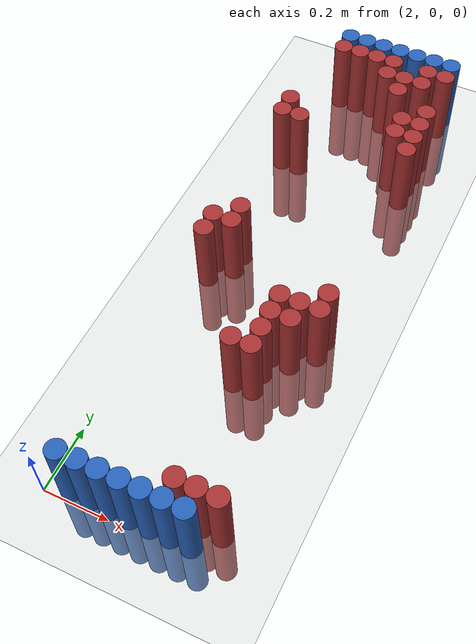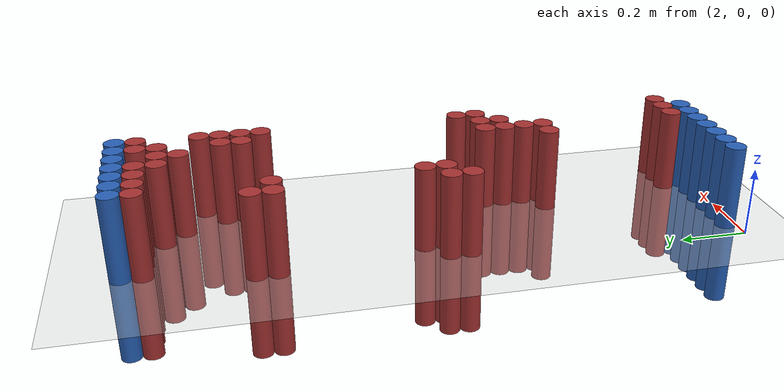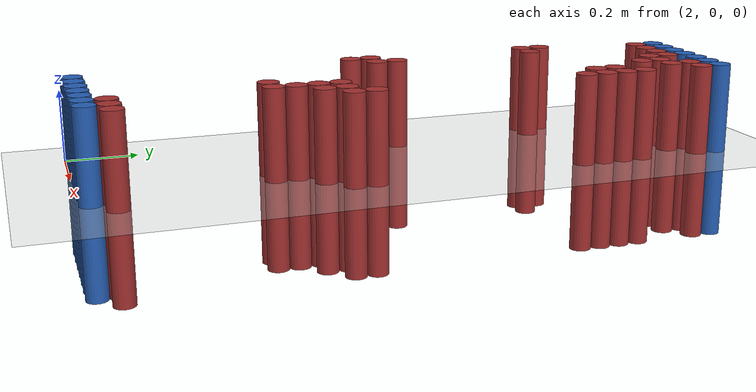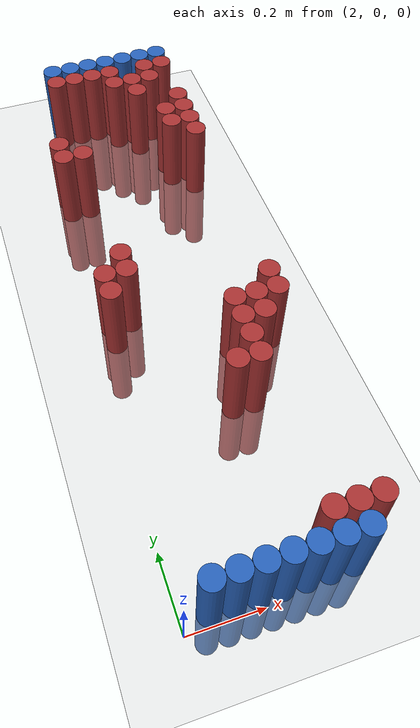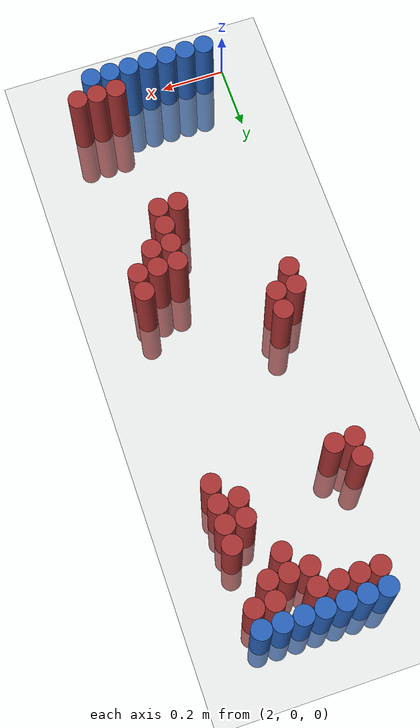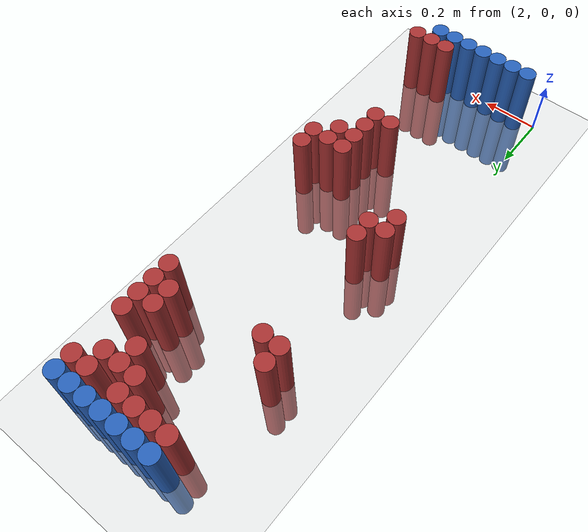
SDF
<sdf version="1.6">
 <world name="default">
  <model name="ground_plane">
   <static>1</static>
   <link name="link">
    <collision name="collision">
     <geometry><plane><normal>0 0 1</normal><size>100 100</size></plane></geometry>
     <surface><friction><ode><mu>100</mu><mu2>50</mu2></ode></friction></surface>
    </collision>
    <visual name="visual">
     <cast_shadows>0</cast_shadows>
     <geometry><plane><normal>0 0 1</normal><size>100 100</size></plane></geometry>
     <material>
      <script><uri>file://media/materials/scripts/gazebo.material</uri><name>Gazebo/Grey</name></script>
     </material>
    </visual>
   </link>
  </model>
  <model name="unit_cylinder_96">
   <static>1</static>
   <pose>2.130000 1.770000 0.000000 0.000000 0.000000 0.000000</pose>
   <link name="link">
    <inertial>
     <mass>1</mass>
     <inertia><ixx>0.145833</ixx><ixy>0</ixy><ixz>0</ixz><iyy>0.145833</iyy><iyz>0</iyz><izz>0.125</izz></inertia>
    </inertial>
    <collision name="collision">
     <geometry><cylinder><radius>0.030000</radius><length>0.5</length></cylinder></geometry>
    </collision>
    <visual name="visual">
     <geometry><cylinder><radius>0.030000</radius><length>0.5</length></cylinder></geometry>
     <material>
      <ambient>0.152000 0.379000 0.720000 1</ambient>
      <diffuse>0.152000 0.379000 0.720000 1</diffuse>
     </material>
     <material>
      <script><name>Gazebo/Grey</name><uri>file://media/materials/scripts/gazebo.material</uri></script>
     </material>
    </visual>
   </link>
  </model>
  <model name="unit_cylinder_97">
   <static>1</static>
   <pose>2.190000 1.770000 0.000000 0.000000 0.000000 0.000000</pose>
   <link name="link">
    <inertial>
     <mass>1</mass>
     <inertia><ixx>0.145833</ixx><ixy>0</ixy><ixz>0</ixz><iyy>0.145833</iyy><iyz>0</iyz><izz>0.125</izz></inertia>
    </inertial>
    <collision name="collision">
     <geometry><cylinder><radius>0.030000</radius><length>0.5</length></cylinder></geometry>
    </collision>
    <visual name="visual">
     <geometry><cylinder><radius>0.030000</radius><length>0.5</length></cylinder></geometry>
     <material>
      <ambient>0.152000 0.379000 0.720000 1</ambient>
      <diffuse>0.152000 0.379000 0.720000 1</diffuse>
     </material>
     <material>
      <script><name>Gazebo/Grey</name><uri>file://media/materials/scripts/gazebo.material</uri></script>
     </material>
    </visual>
   </link>
  </model>
  <model name="unit_cylinder_98">
   <static>1</static>
   <pose>2.250000 1.770000 0.000000 0.000000 0.000000 0.000000</pose>
   <link name="link">
    <inertial>
     <mass>1</mass>
     <inertia><ixx>0.145833</ixx><ixy>0</ixy><ixz>0</ixz><iyy>0.145833</iyy><iyz>0</iyz><izz>0.125</izz></inertia>
    </inertial>
    <collision name="collision">
     <geometry><cylinder><radius>0.030000</radius><length>0.5</length></cylinder></geometry>
    </collision>
    <visual name="visual">
     <geometry><cylinder><radius>0.030000</radius><length>0.5</length></cylinder></geometry>
     <material>
      <ambient>0.152000 0.379000 0.720000 1</ambient>
      <diffuse>0.152000 0.379000 0.720000 1</diffuse>
     </material>
     <material>
      <script><name>Gazebo/Grey</name><uri>file://media/materials/scripts/gazebo.material</uri></script>
     </material>
    </visual>
   </link>
  </model>
  <model name="unit_cylinder_99">
   <static>1</static>
   <pose>2.310000 1.770000 0.000000 0.000000 0.000000 0.000000</pose>
   <link name="link">
    <inertial>
     <mass>1</mass>
     <inertia><ixx>0.145833</ixx><ixy>0</ixy><ixz>0</ixz><iyy>0.145833</iyy><iyz>0</iyz><izz>0.125</izz></inertia>
    </inertial>
    <collision name="collision">
     <geometry><cylinder><radius>0.030000</radius><length>0.5</length></cylinder></geometry>
    </collision>
    <visual name="visual">
     <geometry><cylinder><radius>0.030000</radius><length>0.5</length></cylinder></geometry>
     <material>
      <ambient>0.152000 0.379000 0.720000 1</ambient>
      <diffuse>0.152000 0.379000 0.720000 1</diffuse>
     </material>
     <material>
      <script><name>Gazebo/Grey</name><uri>file://media/materials/scripts/gazebo.material</uri></script>
     </material>
    </visual>
   </link>
  </model>
  <model name="unit_cylinder_100">
   <static>1</static>
   <pose>2.370000 1.770000 0.000000 0.000000 0.000000 0.000000</pose>
   <link name="link">
    <inertial>
     <mass>1</mass>
     <inertia><ixx>0.145833</ixx><ixy>0</ixy><ixz>0</ixz><iyy>0.145833</iyy><iyz>0</iyz><izz>0.125</izz></inertia>
    </inertial>
    <collision name="collision">
     <geometry><cylinder><radius>0.030000</radius><length>0.5</length></cylinder></geometry>
    </collision>
    <visual name="visual">
     <geometry><cylinder><radius>0.030000</radius><length>0.5</length></cylinder></geometry>
     <material>
      <ambient>0.152000 0.379000 0.720000 1</ambient>
      <diffuse>0.152000 0.379000 0.720000 1</diffuse>
     </material>
     <material>
      <script><name>Gazebo/Grey</name><uri>file://media/materials/scripts/gazebo.material</uri></script>
     </material>
    </visual>
   </link>
  </model>
  <model name="unit_cylinder_101">
   <static>1</static>
   <pose>2.430000 1.770000 0.000000 0.000000 0.000000 0.000000</pose>
   <link name="link">
    <inertial>
     <mass>1</mass>
     <inertia><ixx>0.145833</ixx><ixy>0</ixy><ixz>0</ixz><iyy>0.145833</iyy><iyz>0</iyz><izz>0.125</izz></inertia>
    </inertial>
    <collision name="collision">
     <geometry><cylinder><radius>0.030000</radius><length>0.5</length></cylinder></geometry>
    </collision>
    <visual name="visual">
     <geometry><cylinder><radius>0.030000</radius><length>0.5</length></cylinder></geometry>
     <material>
      <ambient>0.152000 0.379000 0.720000 1</ambient>
      <diffuse>0.152000 0.379000 0.720000 1</diffuse>
     </material>
     <material>
      <script><name>Gazebo/Grey</name><uri>file://media/materials/scripts/gazebo.material</uri></script>
     </material>
    </visual>
   </link>
  </model>
  <model name="unit_cylinder_102">
   <static>1</static>
   <pose>2.490000 1.770000 0.000000 0.000000 0.000000 0.000000</pose>
   <link name="link">
    <inertial>
     <mass>1</mass>
     <inertia><ixx>0.145833</ixx><ixy>0</ixy><ixz>0</ixz><iyy>0.145833</iyy><iyz>0</iyz><izz>0.125</izz></inertia>
    </inertial>
    <collision name="collision">
     <geometry><cylinder><radius>0.030000</radius><length>0.5</length></cylinder></geometry>
    </collision>
    <visual name="visual">
     <geometry><cylinder><radius>0.030000</radius><length>0.5</length></cylinder></geometry>
     <material>
      <ambient>0.152000 0.379000 0.720000 1</ambient>
      <diffuse>0.152000 0.379000 0.720000 1</diffuse>
     </material>
     <material>
      <script><name>Gazebo/Grey</name><uri>file://media/materials/scripts/gazebo.material</uri></script>
     </material>
    </visual>
   </link>
  </model>
  <model name="unit_cylinder_125">
   <static>1</static>
   <pose>2.130000 1.710000 0.000000 0.000000 0.000000 0.000000</pose>
   <link name="link">
    <inertial>
     <mass>1</mass>
     <inertia><ixx>0.145833</ixx><ixy>0</ixy><ixz>0</ixz><iyy>0.145833</iyy><iyz>0</iyz><izz>0.125</izz></inertia>
    </inertial>
    <collision name="collision">
     <geometry><cylinder><radius>0.030000</radius><length>0.5</length></cylinder></geometry>
    </collision>
    <visual name="visual">
     <geometry><cylinder><radius>0.030000</radius><length>0.5</length></cylinder></geometry>
     <material>
      <ambient>0.648000 0.192000 0.192000 1</ambient>
      <diffuse>0.648000 0.192000 0.192000 1</diffuse>
     </material>
     <material>
      <script><name>Gazebo/Grey</name><uri>file://media/materials/scripts/gazebo.material</uri></script>
     </material>
    </visual>
   </link>
  </model>
  <model name="unit_cylinder_126">
   <static>1</static>
   <pose>2.190000 1.710000 0.000000 0.000000 0.000000 0.000000</pose>
   <link name="link">
    <inertial>
     <mass>1</mass>
     <inertia><ixx>0.145833</ixx><ixy>0</ixy><ixz>0</ixz><iyy>0.145833</iyy><iyz>0</iyz><izz>0.125</izz></inertia>
    </inertial>
    <collision name="collision">
     <geometry><cylinder><radius>0.030000</radius><length>0.5</length></cylinder></geometry>
    </collision>
    <visual name="visual">
     <geometry><cylinder><radius>0.030000</radius><length>0.5</length></cylinder></geometry>
     <material>
      <ambient>0.648000 0.192000 0.192000 1</ambient>
      <diffuse>0.648000 0.192000 0.192000 1</diffuse>
     </material>
     <material>
      <script><name>Gazebo/Grey</name><uri>file://media/materials/scripts/gazebo.material</uri></script>
     </material>
    </visual>
   </link>
  </model>
  <model name="unit_cylinder_127">
   <static>1</static>
   <pose>2.250000 1.710000 0.000000 0.000000 0.000000 0.000000</pose>
   <link name="link">
    <inertial>
     <mass>1</mass>
     <inertia><ixx>0.145833</ixx><ixy>0</ixy><ixz>0</ixz><iyy>0.145833</iyy><iyz>0</iyz><izz>0.125</izz></inertia>
    </inertial>
    <collision name="collision">
     <geometry><cylinder><radius>0.030000</radius><length>0.5</length></cylinder></geometry>
    </collision>
    <visual name="visual">
     <geometry><cylinder><radius>0.030000</radius><length>0.5</length></cylinder></geometry>
     <material>
      <ambient>0.648000 0.192000 0.192000 1</ambient>
      <diffuse>0.648000 0.192000 0.192000 1</diffuse>
     </material>
     <material>
      <script><name>Gazebo/Grey</name><uri>file://media/materials/scripts/gazebo.material</uri></script>
     </material>
    </visual>
   </link>
  </model>
  <model name="unit_cylinder_128">
   <static>1</static>
   <pose>2.310000 1.710000 0.000000 0.000000 0.000000 0.000000</pose>
   <link name="link">
    <inertial>
     <mass>1</mass>
     <inertia><ixx>0.145833</ixx><ixy>0</ixy><ixz>0</ixz><iyy>0.145833</iyy><iyz>0</iyz><izz>0.125</izz></inertia>
    </inertial>
    <collision name="collision">
     <geometry><cylinder><radius>0.030000</radius><length>0.5</length></cylinder></geometry>
    </collision>
    <visual name="visual">
     <geometry><cylinder><radius>0.030000</radius><length>0.5</length></cylinder></geometry>
     <material>
      <ambient>0.648000 0.192000 0.192000 1</ambient>
      <diffuse>0.648000 0.192000 0.192000 1</diffuse>
     </material>
     <material>
      <script><name>Gazebo/Grey</name><uri>file://media/materials/scripts/gazebo.material</uri></script>
     </material>
    </visual>
   </link>
  </model>
  <model name="unit_cylinder_129">
   <static>1</static>
   <pose>2.430000 1.710000 0.000000 0.000000 0.000000 0.000000</pose>
   <link name="link">
    <inertial>
     <mass>1</mass>
     <inertia><ixx>0.145833</ixx><ixy>0</ixy><ixz>0</ixz><iyy>0.145833</iyy><iyz>0</iyz><izz>0.125</izz></inertia>
    </inertial>
    <collision name="collision">
     <geometry><cylinder><radius>0.030000</radius><length>0.5</length></cylinder></geometry>
    </collision>
    <visual name="visual">
     <geometry><cylinder><radius>0.030000</radius><length>0.5</length></cylinder></geometry>
     <material>
      <ambient>0.648000 0.192000 0.192000 1</ambient>
      <diffuse>0.648000 0.192000 0.192000 1</diffuse>
     </material>
     <material>
      <script><name>Gazebo/Grey</name><uri>file://media/materials/scripts/gazebo.material</uri></script>
     </material>
    </visual>
   </link>
  </model>
  <model name="unit_cylinder_130">
   <static>1</static>
   <pose>2.490000 1.710000 0.000000 0.000000 0.000000 0.000000</pose>
   <link name="link">
    <inertial>
     <mass>1</mass>
     <inertia><ixx>0.145833</ixx><ixy>0</ixy><ixz>0</ixz><iyy>0.145833</iyy><iyz>0</iyz><izz>0.125</izz></inertia>
    </inertial>
    <collision name="collision">
     <geometry><cylinder><radius>0.030000</radius><length>0.5</length></cylinder></geometry>
    </collision>
    <visual name="visual">
     <geometry><cylinder><radius>0.030000</radius><length>0.5</length></cylinder></geometry>
     <material>
      <ambient>0.648000 0.192000 0.192000 1</ambient>
      <diffuse>0.648000 0.192000 0.192000 1</diffuse>
     </material>
     <material>
      <script><name>Gazebo/Grey</name><uri>file://media/materials/scripts/gazebo.material</uri></script>
     </material>
    </visual>
   </link>
  </model>
  <model name="unit_cylinder_147">
   <static>1</static>
   <pose>2.310000 1.650000 0.000000 0.000000 0.000000 0.000000</pose>
   <link name="link">
    <inertial>
     <mass>1</mass>
     <inertia><ixx>0.145833</ixx><ixy>0</ixy><ixz>0</ixz><iyy>0.145833</iyy><iyz>0</iyz><izz>0.125</izz></inertia>
    </inertial>
    <collision name="collision">
     <geometry><cylinder><radius>0.030000</radius><length>0.5</length></cylinder></geometry>
    </collision>
    <visual name="visual">
     <geometry><cylinder><radius>0.030000</radius><length>0.5</length></cylinder></geometry>
     <material>
      <ambient>0.648000 0.192000 0.192000 1</ambient>
      <diffuse>0.648000 0.192000 0.192000 1</diffuse>
     </material>
     <material>
      <script><name>Gazebo/Grey</name><uri>file://media/materials/scripts/gazebo.material</uri></script>
     </material>
    </visual>
   </link>
  </model>
  <model name="unit_cylinder_148">
   <static>1</static>
   <pose>2.370000 1.650000 0.000000 0.000000 0.000000 0.000000</pose>
   <link name="link">
    <inertial>
     <mass>1</mass>
     <inertia><ixx>0.145833</ixx><ixy>0</ixy><ixz>0</ixz><iyy>0.145833</iyy><iyz>0</iyz><izz>0.125</izz></inertia>
    </inertial>
    <collision name="collision">
     <geometry><cylinder><radius>0.030000</radius><length>0.5</length></cylinder></geometry>
    </collision>
    <visual name="visual">
     <geometry><cylinder><radius>0.030000</radius><length>0.5</length></cylinder></geometry>
     <material>
      <ambient>0.648000 0.192000 0.192000 1</ambient>
      <diffuse>0.648000 0.192000 0.192000 1</diffuse>
     </material>
     <material>
      <script><name>Gazebo/Grey</name><uri>file://media/materials/scripts/gazebo.material</uri></script>
     </material>
    </visual>
   </link>
  </model>
  <model name="unit_cylinder_149">
   <static>1</static>
   <pose>2.430000 1.650000 0.000000 0.000000 0.000000 0.000000</pose>
   <link name="link">
    <inertial>
     <mass>1</mass>
     <inertia><ixx>0.145833</ixx><ixy>0</ixy><ixz>0</ixz><iyy>0.145833</iyy><iyz>0</iyz><izz>0.125</izz></inertia>
    </inertial>
    <collision name="collision">
     <geometry><cylinder><radius>0.030000</radius><length>0.5</length></cylinder></geometry>
    </collision>
    <visual name="visual">
     <geometry><cylinder><radius>0.030000</radius><length>0.5</length></cylinder></geometry>
     <material>
      <ambient>0.648000 0.192000 0.192000 1</ambient>
      <diffuse>0.648000 0.192000 0.192000 1</diffuse>
     </material>
     <material>
      <script><name>Gazebo/Grey</name><uri>file://media/materials/scripts/gazebo.material</uri></script>
     </material>
    </visual>
   </link>
  </model>
  <model name="unit_cylinder_155">
   <static>1</static>
   <pose>2.370000 1.590000 0.000000 0.000000 0.000000 0.000000</pose>
   <link name="link">
    <inertial>
     <mass>1</mass>
     <inertia><ixx>0.145833</ixx><ixy>0</ixy><ixz>0</ixz><iyy>0.145833</iyy><iyz>0</iyz><izz>0.125</izz></inertia>
    </inertial>
    <collision name="collision">
     <geometry><cylinder><radius>0.030000</radius><length>0.5</length></cylinder></geometry>
    </collision>
    <visual name="visual">
     <geometry><cylinder><radius>0.030000</radius><length>0.5</length></cylinder></geometry>
     <material>
      <ambient>0.648000 0.192000 0.192000 1</ambient>
      <diffuse>0.648000 0.192000 0.192000 1</diffuse>
     </material>
     <material>
      <script><name>Gazebo/Grey</name><uri>file://media/materials/scripts/gazebo.material</uri></script>
     </material>
    </visual>
   </link>
  </model>
  <model name="unit_cylinder_159">
   <static>1</static>
   <pose>2.490000 1.530000 0.000000 0.000000 0.000000 0.000000</pose>
   <link name="link">
    <inertial>
     <mass>1</mass>
     <inertia><ixx>0.145833</ixx><ixy>0</ixy><ixz>0</ixz><iyy>0.145833</iyy><iyz>0</iyz><izz>0.125</izz></inertia>
    </inertial>
    <collision name="collision">
     <geometry><cylinder><radius>0.030000</radius><length>0.5</length></cylinder></geometry>
    </collision>
    <visual name="visual">
     <geometry><cylinder><radius>0.030000</radius><length>0.5</length></cylinder></geometry>
     <material>
      <ambient>0.648000 0.192000 0.192000 1</ambient>
      <diffuse>0.648000 0.192000 0.192000 1</diffuse>
     </material>
     <material>
      <script><name>Gazebo/Grey</name><uri>file://media/materials/scripts/gazebo.material</uri></script>
     </material>
    </visual>
   </link>
  </model>
  <model name="unit_cylinder_164">
   <static>1</static>
   <pose>2.430000 1.470000 0.000000 0.000000 0.000000 0.000000</pose>
   <link name="link">
    <inertial>
     <mass>1</mass>
     <inertia><ixx>0.145833</ixx><ixy>0</ixy><ixz>0</ixz><iyy>0.145833</iyy><iyz>0</iyz><izz>0.125</izz></inertia>
    </inertial>
    <collision name="collision">
     <geometry><cylinder><radius>0.030000</radius><length>0.5</length></cylinder></geometry>
    </collision>
    <visual name="visual">
     <geometry><cylinder><radius>0.030000</radius><length>0.5</length></cylinder></geometry>
     <material>
      <ambient>0.648000 0.192000 0.192000 1</ambient>
      <diffuse>0.648000 0.192000 0.192000 1</diffuse>
     </material>
     <material>
      <script><name>Gazebo/Grey</name><uri>file://media/materials/scripts/gazebo.material</uri></script>
     </material>
    </visual>
   </link>
  </model>
  <model name="unit_cylinder_165">
   <static>1</static>
   <pose>2.490000 1.470000 0.000000 0.000000 0.000000 0.000000</pose>
   <link name="link">
    <inertial>
     <mass>1</mass>
     <inertia><ixx>0.145833</ixx><ixy>0</ixy><ixz>0</ixz><iyy>0.145833</iyy><iyz>0</iyz><izz>0.125</izz></inertia>
    </inertial>
    <collision name="collision">
     <geometry><cylinder><radius>0.030000</radius><length>0.5</length></cylinder></geometry>
    </collision>
    <visual name="visual">
     <geometry><cylinder><radius>0.030000</radius><length>0.5</length></cylinder></geometry>
     <material>
      <ambient>0.648000 0.192000 0.192000 1</ambient>
      <diffuse>0.648000 0.192000 0.192000 1</diffuse>
     </material>
     <material>
      <script><name>Gazebo/Grey</name><uri>file://media/materials/scripts/gazebo.material</uri></script>
     </material>
    </visual>
   </link>
  </model>
  <model name="unit_cylinder_171">
   <static>1</static>
   <pose>2.070000 1.410000 0.000000 0.000000 0.000000 0.000000</pose>
   <link name="link">
    <inertial>
     <mass>1</mass>
     <inertia><ixx>0.145833</ixx><ixy>0</ixy><ixz>0</ixz><iyy>0.145833</iyy><iyz>0</iyz><izz>0.125</izz></inertia>
    </inertial>
    <collision name="collision">
     <geometry><cylinder><radius>0.030000</radius><length>0.5</length></cylinder></geometry>
    </collision>
    <visual name="visual">
     <geometry><cylinder><radius>0.030000</radius><length>0.5</length></cylinder></geometry>
     <material>
      <ambient>0.648000 0.192000 0.192000 1</ambient>
      <diffuse>0.648000 0.192000 0.192000 1</diffuse>
     </material>
     <material>
      <script><name>Gazebo/Grey</name><uri>file://media/materials/scripts/gazebo.material</uri></script>
     </material>
    </visual>
   </link>
  </model>
  <model name="unit_cylinder_172">
   <static>1</static>
   <pose>2.430000 1.410000 0.000000 0.000000 0.000000 0.000000</pose>
   <link name="link">
    <inertial>
     <mass>1</mass>
     <inertia><ixx>0.145833</ixx><ixy>0</ixy><ixz>0</ixz><iyy>0.145833</iyy><iyz>0</iyz><izz>0.125</izz></inertia>
    </inertial>
    <collision name="collision">
     <geometry><cylinder><radius>0.030000</radius><length>0.5</length></cylinder></geometry>
    </collision>
    <visual name="visual">
     <geometry><cylinder><radius>0.030000</radius><length>0.5</length></cylinder></geometry>
     <material>
      <ambient>0.648000 0.192000 0.192000 1</ambient>
      <diffuse>0.648000 0.192000 0.192000 1</diffuse>
     </material>
     <material>
      <script><name>Gazebo/Grey</name><uri>file://media/materials/scripts/gazebo.material</uri></script>
     </material>
    </visual>
   </link>
  </model>
  <model name="unit_cylinder_173">
   <static>1</static>
   <pose>2.490000 1.410000 0.000000 0.000000 0.000000 0.000000</pose>
   <link name="link">
    <inertial>
     <mass>1</mass>
     <inertia><ixx>0.145833</ixx><ixy>0</ixy><ixz>0</ixz><iyy>0.145833</iyy><iyz>0</iyz><izz>0.125</izz></inertia>
    </inertial>
    <collision name="collision">
     <geometry><cylinder><radius>0.030000</radius><length>0.5</length></cylinder></geometry>
    </collision>
    <visual name="visual">
     <geometry><cylinder><radius>0.030000</radius><length>0.5</length></cylinder></geometry>
     <material>
      <ambient>0.648000 0.192000 0.192000 1</ambient>
      <diffuse>0.648000 0.192000 0.192000 1</diffuse>
     </material>
     <material>
      <script><name>Gazebo/Grey</name><uri>file://media/materials/scripts/gazebo.material</uri></script>
     </material>
    </visual>
   </link>
  </model>
  <model name="unit_cylinder_181">
   <static>1</static>
   <pose>2.070000 1.350000 0.000000 0.000000 0.000000 0.000000</pose>
   <link name="link">
    <inertial>
     <mass>1</mass>
     <inertia><ixx>0.145833</ixx><ixy>0</ixy><ixz>0</ixz><iyy>0.145833</iyy><iyz>0</iyz><izz>0.125</izz></inertia>
    </inertial>
    <collision name="collision">
     <geometry><cylinder><radius>0.030000</radius><length>0.5</length></cylinder></geometry>
    </collision>
    <visual name="visual">
     <geometry><cylinder><radius>0.030000</radius><length>0.5</length></cylinder></geometry>
     <material>
      <ambient>0.648000 0.192000 0.192000 1</ambient>
      <diffuse>0.648000 0.192000 0.192000 1</diffuse>
     </material>
     <material>
      <script><name>Gazebo/Grey</name><uri>file://media/materials/scripts/gazebo.material</uri></script>
     </material>
    </visual>
   </link>
  </model>
  <model name="unit_cylinder_182">
   <static>1</static>
   <pose>2.130000 1.350000 0.000000 0.000000 0.000000 0.000000</pose>
   <link name="link">
    <inertial>
     <mass>1</mass>
     <inertia><ixx>0.145833</ixx><ixy>0</ixy><ixz>0</ixz><iyy>0.145833</iyy><iyz>0</iyz><izz>0.125</izz></inertia>
    </inertial>
    <collision name="collision">
     <geometry><cylinder><radius>0.030000</radius><length>0.5</length></cylinder></geometry>
    </collision>
    <visual name="visual">
     <geometry><cylinder><radius>0.030000</radius><length>0.5</length></cylinder></geometry>
     <material>
      <ambient>0.648000 0.192000 0.192000 1</ambient>
      <diffuse>0.648000 0.192000 0.192000 1</diffuse>
     </material>
     <material>
      <script><name>Gazebo/Grey</name><uri>file://media/materials/scripts/gazebo.material</uri></script>
     </material>
    </visual>
   </link>
  </model>
  <model name="unit_cylinder_183">
   <static>1</static>
   <pose>2.490000 1.350000 0.000000 0.000000 0.000000 0.000000</pose>
   <link name="link">
    <inertial>
     <mass>1</mass>
     <inertia><ixx>0.145833</ixx><ixy>0</ixy><ixz>0</ixz><iyy>0.145833</iyy><iyz>0</iyz><izz>0.125</izz></inertia>
    </inertial>
    <collision name="collision">
     <geometry><cylinder><radius>0.030000</radius><length>0.5</length></cylinder></geometry>
    </collision>
    <visual name="visual">
     <geometry><cylinder><radius>0.030000</radius><length>0.5</length></cylinder></geometry>
     <material>
      <ambient>0.648000 0.192000 0.192000 1</ambient>
      <diffuse>0.648000 0.192000 0.192000 1</diffuse>
     </material>
     <material>
      <script><name>Gazebo/Grey</name><uri>file://media/materials/scripts/gazebo.material</uri></script>
     </material>
    </visual>
   </link>
  </model>
  <model name="unit_cylinder_218">
   <static>1</static>
   <pose>2.130000 0.930000 0.000000 0.000000 0.000000 0.000000</pose>
   <link name="link">
    <inertial>
     <mass>1</mass>
     <inertia><ixx>0.145833</ixx><ixy>0</ixy><ixz>0</ixz><iyy>0.145833</iyy><iyz>0</iyz><izz>0.125</izz></inertia>
    </inertial>
    <collision name="collision">
     <geometry><cylinder><radius>0.030000</radius><length>0.5</length></cylinder></geometry>
    </collision>
    <visual name="visual">
     <geometry><cylinder><radius>0.030000</radius><length>0.5</length></cylinder></geometry>
     <material>
      <ambient>0.648000 0.192000 0.192000 1</ambient>
      <diffuse>0.648000 0.192000 0.192000 1</diffuse>
     </material>
     <material>
      <script><name>Gazebo/Grey</name><uri>file://media/materials/scripts/gazebo.material</uri></script>
     </material>
    </visual>
   </link>
  </model>
  <model name="unit_cylinder_223">
   <static>1</static>
   <pose>2.070000 0.870000 0.000000 0.000000 0.000000 0.000000</pose>
   <link name="link">
    <inertial>
     <mass>1</mass>
     <inertia><ixx>0.145833</ixx><ixy>0</ixy><ixz>0</ixz><iyy>0.145833</iyy><iyz>0</iyz><izz>0.125</izz></inertia>
    </inertial>
    <collision name="collision">
     <geometry><cylinder><radius>0.030000</radius><length>0.5</length></cylinder></geometry>
    </collision>
    <visual name="visual">
     <geometry><cylinder><radius>0.030000</radius><length>0.5</length></cylinder></geometry>
     <material>
      <ambient>0.648000 0.192000 0.192000 1</ambient>
      <diffuse>0.648000 0.192000 0.192000 1</diffuse>
     </material>
     <material>
      <script><name>Gazebo/Grey</name><uri>file://media/materials/scripts/gazebo.material</uri></script>
     </material>
    </visual>
   </link>
  </model>
  <model name="unit_cylinder_224">
   <static>1</static>
   <pose>2.130000 0.870000 0.000000 0.000000 0.000000 0.000000</pose>
   <link name="link">
    <inertial>
     <mass>1</mass>
     <inertia><ixx>0.145833</ixx><ixy>0</ixy><ixz>0</ixz><iyy>0.145833</iyy><iyz>0</iyz><izz>0.125</izz></inertia>
    </inertial>
    <collision name="collision">
     <geometry><cylinder><radius>0.030000</radius><length>0.5</length></cylinder></geometry>
    </collision>
    <visual name="visual">
     <geometry><cylinder><radius>0.030000</radius><length>0.5</length></cylinder></geometry>
     <material>
      <ambient>0.648000 0.192000 0.192000 1</ambient>
      <diffuse>0.648000 0.192000 0.192000 1</diffuse>
     </material>
     <material>
      <script><name>Gazebo/Grey</name><uri>file://media/materials/scripts/gazebo.material</uri></script>
     </material>
    </visual>
   </link>
  </model>
  <model name="unit_cylinder_230">
   <static>1</static>
   <pose>2.070000 0.810000 0.000000 0.000000 0.000000 0.000000</pose>
   <link name="link">
    <inertial>
     <mass>1</mass>
     <inertia><ixx>0.145833</ixx><ixy>0</ixy><ixz>0</ixz><iyy>0.145833</iyy><iyz>0</iyz><izz>0.125</izz></inertia>
    </inertial>
    <collision name="collision">
     <geometry><cylinder><radius>0.030000</radius><length>0.5</length></cylinder></geometry>
    </collision>
    <visual name="visual">
     <geometry><cylinder><radius>0.030000</radius><length>0.5</length></cylinder></geometry>
     <material>
      <ambient>0.648000 0.192000 0.192000 1</ambient>
      <diffuse>0.648000 0.192000 0.192000 1</diffuse>
     </material>
     <material>
      <script><name>Gazebo/Grey</name><uri>file://media/materials/scripts/gazebo.material</uri></script>
     </material>
    </visual>
   </link>
  </model>
  <model name="unit_cylinder_239">
   <static>1</static>
   <pose>2.490000 0.750000 0.000000 0.000000 0.000000 0.000000</pose>
   <link name="link">
    <inertial>
     <mass>1</mass>
     <inertia><ixx>0.145833</ixx><ixy>0</ixy><ixz>0</ixz><iyy>0.145833</iyy><iyz>0</iyz><izz>0.125</izz></inertia>
    </inertial>
    <collision name="collision">
     <geometry><cylinder><radius>0.030000</radius><length>0.5</length></cylinder></geometry>
    </collision>
    <visual name="visual">
     <geometry><cylinder><radius>0.030000</radius><length>0.5</length></cylinder></geometry>
     <material>
      <ambient>0.648000 0.192000 0.192000 1</ambient>
      <diffuse>0.648000 0.192000 0.192000 1</diffuse>
     </material>
     <material>
      <script><name>Gazebo/Grey</name><uri>file://media/materials/scripts/gazebo.material</uri></script>
     </material>
    </visual>
   </link>
  </model>
  <model name="unit_cylinder_247">
   <static>1</static>
   <pose>2.370000 0.690000 0.000000 0.000000 0.000000 0.000000</pose>
   <link name="link">
    <inertial>
     <mass>1</mass>
     <inertia><ixx>0.145833</ixx><ixy>0</ixy><ixz>0</ixz><iyy>0.145833</iyy><iyz>0</iyz><izz>0.125</izz></inertia>
    </inertial>
    <collision name="collision">
     <geometry><cylinder><radius>0.030000</radius><length>0.5</length></cylinder></geometry>
    </collision>
    <visual name="visual">
     <geometry><cylinder><radius>0.030000</radius><length>0.5</length></cylinder></geometry>
     <material>
      <ambient>0.648000 0.192000 0.192000 1</ambient>
      <diffuse>0.648000 0.192000 0.192000 1</diffuse>
     </material>
     <material>
      <script><name>Gazebo/Grey</name><uri>file://media/materials/scripts/gazebo.material</uri></script>
     </material>
    </visual>
   </link>
  </model>
  <model name="unit_cylinder_248">
   <static>1</static>
   <pose>2.430000 0.690000 0.000000 0.000000 0.000000 0.000000</pose>
   <link name="link">
    <inertial>
     <mass>1</mass>
     <inertia><ixx>0.145833</ixx><ixy>0</ixy><ixz>0</ixz><iyy>0.145833</iyy><iyz>0</iyz><izz>0.125</izz></inertia>
    </inertial>
    <collision name="collision">
     <geometry><cylinder><radius>0.030000</radius><length>0.5</length></cylinder></geometry>
    </collision>
    <visual name="visual">
     <geometry><cylinder><radius>0.030000</radius><length>0.5</length></cylinder></geometry>
     <material>
      <ambient>0.648000 0.192000 0.192000 1</ambient>
      <diffuse>0.648000 0.192000 0.192000 1</diffuse>
     </material>
     <material>
      <script><name>Gazebo/Grey</name><uri>file://media/materials/scripts/gazebo.material</uri></script>
     </material>
    </visual>
   </link>
  </model>
  <model name="unit_cylinder_249">
   <static>1</static>
   <pose>2.490000 0.690000 0.000000 0.000000 0.000000 0.000000</pose>
   <link name="link">
    <inertial>
     <mass>1</mass>
     <inertia><ixx>0.145833</ixx><ixy>0</ixy><ixz>0</ixz><iyy>0.145833</iyy><iyz>0</iyz><izz>0.125</izz></inertia>
    </inertial>
    <collision name="collision">
     <geometry><cylinder><radius>0.030000</radius><length>0.5</length></cylinder></geometry>
    </collision>
    <visual name="visual">
     <geometry><cylinder><radius>0.030000</radius><length>0.5</length></cylinder></geometry>
     <material>
      <ambient>0.648000 0.192000 0.192000 1</ambient>
      <diffuse>0.648000 0.192000 0.192000 1</diffuse>
     </material>
     <material>
      <script><name>Gazebo/Grey</name><uri>file://media/materials/scripts/gazebo.material</uri></script>
     </material>
    </visual>
   </link>
  </model>
  <model name="unit_cylinder_254">
   <static>1</static>
   <pose>2.370000 0.630000 0.000000 0.000000 0.000000 0.000000</pose>
   <link name="link">
    <inertial>
     <mass>1</mass>
     <inertia><ixx>0.145833</ixx><ixy>0</ixy><ixz>0</ixz><iyy>0.145833</iyy><iyz>0</iyz><izz>0.125</izz></inertia>
    </inertial>
    <collision name="collision">
     <geometry><cylinder><radius>0.030000</radius><length>0.5</length></cylinder></geometry>
    </collision>
    <visual name="visual">
     <geometry><cylinder><radius>0.030000</radius><length>0.5</length></cylinder></geometry>
     <material>
      <ambient>0.648000 0.192000 0.192000 1</ambient>
      <diffuse>0.648000 0.192000 0.192000 1</diffuse>
     </material>
     <material>
      <script><name>Gazebo/Grey</name><uri>file://media/materials/scripts/gazebo.material</uri></script>
     </material>
    </visual>
   </link>
  </model>
  <model name="unit_cylinder_255">
   <static>1</static>
   <pose>2.430000 0.630000 0.000000 0.000000 0.000000 0.000000</pose>
   <link name="link">
    <inertial>
     <mass>1</mass>
     <inertia><ixx>0.145833</ixx><ixy>0</ixy><ixz>0</ixz><iyy>0.145833</iyy><iyz>0</iyz><izz>0.125</izz></inertia>
    </inertial>
    <collision name="collision">
     <geometry><cylinder><radius>0.030000</radius><length>0.5</length></cylinder></geometry>
    </collision>
    <visual name="visual">
     <geometry><cylinder><radius>0.030000</radius><length>0.5</length></cylinder></geometry>
     <material>
      <ambient>0.648000 0.192000 0.192000 1</ambient>
      <diffuse>0.648000 0.192000 0.192000 1</diffuse>
     </material>
     <material>
      <script><name>Gazebo/Grey</name><uri>file://media/materials/scripts/gazebo.material</uri></script>
     </material>
    </visual>
   </link>
  </model>
  <model name="unit_cylinder_259">
   <static>1</static>
   <pose>2.370000 0.570000 0.000000 0.000000 0.000000 0.000000</pose>
   <link name="link">
    <inertial>
     <mass>1</mass>
     <inertia><ixx>0.145833</ixx><ixy>0</ixy><ixz>0</ixz><iyy>0.145833</iyy><iyz>0</iyz><izz>0.125</izz></inertia>
    </inertial>
    <collision name="collision">
     <geometry><cylinder><radius>0.030000</radius><length>0.5</length></cylinder></geometry>
    </collision>
    <visual name="visual">
     <geometry><cylinder><radius>0.030000</radius><length>0.5</length></cylinder></geometry>
     <material>
      <ambient>0.648000 0.192000 0.192000 1</ambient>
      <diffuse>0.648000 0.192000 0.192000 1</diffuse>
     </material>
     <material>
      <script><name>Gazebo/Grey</name><uri>file://media/materials/scripts/gazebo.material</uri></script>
     </material>
    </visual>
   </link>
  </model>
  <model name="unit_cylinder_261">
   <static>1</static>
   <pose>2.310000 0.510000 0.000000 0.000000 0.000000 0.000000</pose>
   <link name="link">
    <inertial>
     <mass>1</mass>
     <inertia><ixx>0.145833</ixx><ixy>0</ixy><ixz>0</ixz><iyy>0.145833</iyy><iyz>0</iyz><izz>0.125</izz></inertia>
    </inertial>
    <collision name="collision">
     <geometry><cylinder><radius>0.030000</radius><length>0.5</length></cylinder></geometry>
    </collision>
    <visual name="visual">
     <geometry><cylinder><radius>0.030000</radius><length>0.5</length></cylinder></geometry>
     <material>
      <ambient>0.648000 0.192000 0.192000 1</ambient>
      <diffuse>0.648000 0.192000 0.192000 1</diffuse>
     </material>
     <material>
      <script><name>Gazebo/Grey</name><uri>file://media/materials/scripts/gazebo.material</uri></script>
     </material>
    </visual>
   </link>
  </model>
  <model name="unit_cylinder_262">
   <static>1</static>
   <pose>2.370000 0.510000 0.000000 0.000000 0.000000 0.000000</pose>
   <link name="link">
    <inertial>
     <mass>1</mass>
     <inertia><ixx>0.145833</ixx><ixy>0</ixy><ixz>0</ixz><iyy>0.145833</iyy><iyz>0</iyz><izz>0.125</izz></inertia>
    </inertial>
    <collision name="collision">
     <geometry><cylinder><radius>0.030000</radius><length>0.5</length></cylinder></geometry>
    </collision>
    <visual name="visual">
     <geometry><cylinder><radius>0.030000</radius><length>0.5</length></cylinder></geometry>
     <material>
      <ambient>0.648000 0.192000 0.192000 1</ambient>
      <diffuse>0.648000 0.192000 0.192000 1</diffuse>
     </material>
     <material>
      <script><name>Gazebo/Grey</name><uri>file://media/materials/scripts/gazebo.material</uri></script>
     </material>
    </visual>
   </link>
  </model>
  <model name="unit_cylinder_292">
   <static>1</static>
   <pose>2.370000 0.090000 0.000000 0.000000 0.000000 0.000000</pose>
   <link name="link">
    <inertial>
     <mass>1</mass>
     <inertia><ixx>0.145833</ixx><ixy>0</ixy><ixz>0</ixz><iyy>0.145833</iyy><iyz>0</iyz><izz>0.125</izz></inertia>
    </inertial>
    <collision name="collision">
     <geometry><cylinder><radius>0.030000</radius><length>0.5</length></cylinder></geometry>
    </collision>
    <visual name="visual">
     <geometry><cylinder><radius>0.030000</radius><length>0.5</length></cylinder></geometry>
     <material>
      <ambient>0.648000 0.192000 0.192000 1</ambient>
      <diffuse>0.648000 0.192000 0.192000 1</diffuse>
     </material>
     <material>
      <script><name>Gazebo/Grey</name><uri>file://media/materials/scripts/gazebo.material</uri></script>
     </material>
    </visual>
   </link>
  </model>
  <model name="unit_cylinder_293">
   <static>1</static>
   <pose>2.430000 0.090000 0.000000 0.000000 0.000000 0.000000</pose>
   <link name="link">
    <inertial>
     <mass>1</mass>
     <inertia><ixx>0.145833</ixx><ixy>0</ixy><ixz>0</ixz><iyy>0.145833</iyy><iyz>0</iyz><izz>0.125</izz></inertia>
    </inertial>
    <collision name="collision">
     <geometry><cylinder><radius>0.030000</radius><length>0.5</length></cylinder></geometry>
    </collision>
    <visual name="visual">
     <geometry><cylinder><radius>0.030000</radius><length>0.5</length></cylinder></geometry>
     <material>
      <ambient>0.648000 0.192000 0.192000 1</ambient>
      <diffuse>0.648000 0.192000 0.192000 1</diffuse>
     </material>
     <material>
      <script><name>Gazebo/Grey</name><uri>file://media/materials/scripts/gazebo.material</uri></script>
     </material>
    </visual>
   </link>
  </model>
  <model name="unit_cylinder_294">
   <static>1</static>
   <pose>2.490000 0.090000 0.000000 0.000000 0.000000 0.000000</pose>
   <link name="link">
    <inertial>
     <mass>1</mass>
     <inertia><ixx>0.145833</ixx><ixy>0</ixy><ixz>0</ixz><iyy>0.145833</iyy><iyz>0</iyz><izz>0.125</izz></inertia>
    </inertial>
    <collision name="collision">
     <geometry><cylinder><radius>0.030000</radius><length>0.5</length></cylinder></geometry>
    </collision>
    <visual name="visual">
     <geometry><cylinder><radius>0.030000</radius><length>0.5</length></cylinder></geometry>
     <material>
      <ambient>0.648000 0.192000 0.192000 1</ambient>
      <diffuse>0.648000 0.192000 0.192000 1</diffuse>
     </material>
     <material>
      <script><name>Gazebo/Grey</name><uri>file://media/materials/scripts/gazebo.material</uri></script>
     </material>
    </visual>
   </link>
  </model>
  <model name="unit_cylinder_308">
   <static>1</static>
   <pose>2.070000 0.030000 0.000000 0.000000 0.000000 0.000000</pose>
   <link name="link">
    <inertial>
     <mass>1</mass>
     <inertia><ixx>0.145833</ixx><ixy>0</ixy><ixz>0</ixz><iyy>0.145833</iyy><iyz>0</iyz><izz>0.125</izz></inertia>
    </inertial>
    <collision name="collision">
     <geometry><cylinder><radius>0.030000</radius><length>0.5</length></cylinder></geometry>
    </collision>
    <visual name="visual">
     <geometry><cylinder><radius>0.030000</radius><length>0.5</length></cylinder></geometry>
     <material>
      <ambient>0.152000 0.379000 0.720000 1</ambient>
      <diffuse>0.152000 0.379000 0.720000 1</diffuse>
     </material>
     <material>
      <script><name>Gazebo/Grey</name><uri>file://media/materials/scripts/gazebo.material</uri></script>
     </material>
    </visual>
   </link>
  </model>
  <model name="unit_cylinder_309">
   <static>1</static>
   <pose>2.130000 0.030000 0.000000 0.000000 0.000000 0.000000</pose>
   <link name="link">
    <inertial>
     <mass>1</mass>
     <inertia><ixx>0.145833</ixx><ixy>0</ixy><ixz>0</ixz><iyy>0.145833</iyy><iyz>0</iyz><izz>0.125</izz></inertia>
    </inertial>
    <collision name="collision">
     <geometry><cylinder><radius>0.030000</radius><length>0.5</length></cylinder></geometry>
    </collision>
    <visual name="visual">
     <geometry><cylinder><radius>0.030000</radius><length>0.5</length></cylinder></geometry>
     <material>
      <ambient>0.152000 0.379000 0.720000 1</ambient>
      <diffuse>0.152000 0.379000 0.720000 1</diffuse>
     </material>
     <material>
      <script><name>Gazebo/Grey</name><uri>file://media/materials/scripts/gazebo.material</uri></script>
     </material>
    </visual>
   </link>
  </model>
  <model name="unit_cylinder_310">
   <static>1</static>
   <pose>2.190000 0.030000 0.000000 0.000000 0.000000 0.000000</pose>
   <link name="link">
    <inertial>
     <mass>1</mass>
     <inertia><ixx>0.145833</ixx><ixy>0</ixy><ixz>0</ixz><iyy>0.145833</iyy><iyz>0</iyz><izz>0.125</izz></inertia>
    </inertial>
    <collision name="collision">
     <geometry><cylinder><radius>0.030000</radius><length>0.5</length></cylinder></geometry>
    </collision>
    <visual name="visual">
     <geometry><cylinder><radius>0.030000</radius><length>0.5</length></cylinder></geometry>
     <material>
      <ambient>0.152000 0.379000 0.720000 1</ambient>
      <diffuse>0.152000 0.379000 0.720000 1</diffuse>
     </material>
     <material>
      <script><name>Gazebo/Grey</name><uri>file://media/materials/scripts/gazebo.material</uri></script>
     </material>
    </visual>
   </link>
  </model>
  <model name="unit_cylinder_311">
   <static>1</static>
   <pose>2.250000 0.030000 0.000000 0.000000 0.000000 0.000000</pose>
   <link name="link">
    <inertial>
     <mass>1</mass>
     <inertia><ixx>0.145833</ixx><ixy>0</ixy><ixz>0</ixz><iyy>0.145833</iyy><iyz>0</iyz><izz>0.125</izz></inertia>
    </inertial>
    <collision name="collision">
     <geometry><cylinder><radius>0.030000</radius><length>0.5</length></cylinder></geometry>
    </collision>
    <visual name="visual">
     <geometry><cylinder><radius>0.030000</radius><length>0.5</length></cylinder></geometry>
     <material>
      <ambient>0.152000 0.379000 0.720000 1</ambient>
      <diffuse>0.152000 0.379000 0.720000 1</diffuse>
     </material>
     <material>
      <script><name>Gazebo/Grey</name><uri>file://media/materials/scripts/gazebo.material</uri></script>
     </material>
    </visual>
   </link>
  </model>
  <model name="unit_cylinder_312">
   <static>1</static>
   <pose>2.310000 0.030000 0.000000 0.000000 0.000000 0.000000</pose>
   <link name="link">
    <inertial>
     <mass>1</mass>
     <inertia><ixx>0.145833</ixx><ixy>0</ixy><ixz>0</ixz><iyy>0.145833</iyy><iyz>0</iyz><izz>0.125</izz></inertia>
    </inertial>
    <collision name="collision">
     <geometry><cylinder><radius>0.030000</radius><length>0.5</length></cylinder></geometry>
    </collision>
    <visual name="visual">
     <geometry><cylinder><radius>0.030000</radius><length>0.5</length></cylinder></geometry>
     <material>
      <ambient>0.152000 0.379000 0.720000 1</ambient>
      <diffuse>0.152000 0.379000 0.720000 1</diffuse>
     </material>
     <material>
      <script><name>Gazebo/Grey</name><uri>file://media/materials/scripts/gazebo.material</uri></script>
     </material>
    </visual>
   </link>
  </model>
  <model name="unit_cylinder_313">
   <static>1</static>
   <pose>2.370000 0.030000 0.000000 0.000000 0.000000 0.000000</pose>
   <link name="link">
    <inertial>
     <mass>1</mass>
     <inertia><ixx>0.145833</ixx><ixy>0</ixy><ixz>0</ixz><iyy>0.145833</iyy><iyz>0</iyz><izz>0.125</izz></inertia>
    </inertial>
    <collision name="collision">
     <geometry><cylinder><radius>0.030000</radius><length>0.5</length></cylinder></geometry>
    </collision>
    <visual name="visual">
     <geometry><cylinder><radius>0.030000</radius><length>0.5</length></cylinder></geometry>
     <material>
      <ambient>0.152000 0.379000 0.720000 1</ambient>
      <diffuse>0.152000 0.379000 0.720000 1</diffuse>
     </material>
     <material>
      <script><name>Gazebo/Grey</name><uri>file://media/materials/scripts/gazebo.material</uri></script>
     </material>
    </visual>
   </link>
  </model>
  <model name="unit_cylinder_314">
   <static>1</static>
   <pose>2.430000 0.030000 0.000000 0.000000 0.000000 0.000000</pose>
   <link name="link">
    <inertial>
     <mass>1</mass>
     <inertia><ixx>0.145833</ixx><ixy>0</ixy><ixz>0</ixz><iyy>0.145833</iyy><iyz>0</iyz><izz>0.125</izz></inertia>
    </inertial>
    <collision name="collision">
     <geometry><cylinder><radius>0.030000</radius><length>0.5</length></cylinder></geometry>
    </collision>
    <visual name="visual">
     <geometry><cylinder><radius>0.030000</radius><length>0.5</length></cylinder></geometry>
     <material>
      <ambient>0.152000 0.379000 0.720000 1</ambient>
      <diffuse>0.152000 0.379000 0.720000 1</diffuse>
     </material>
     <material>
      <script><name>Gazebo/Grey</name><uri>file://media/materials/scripts/gazebo.material</uri></script>
     </material>
    </visual>
   </link>
  </model>
 </world>
</sdf>
